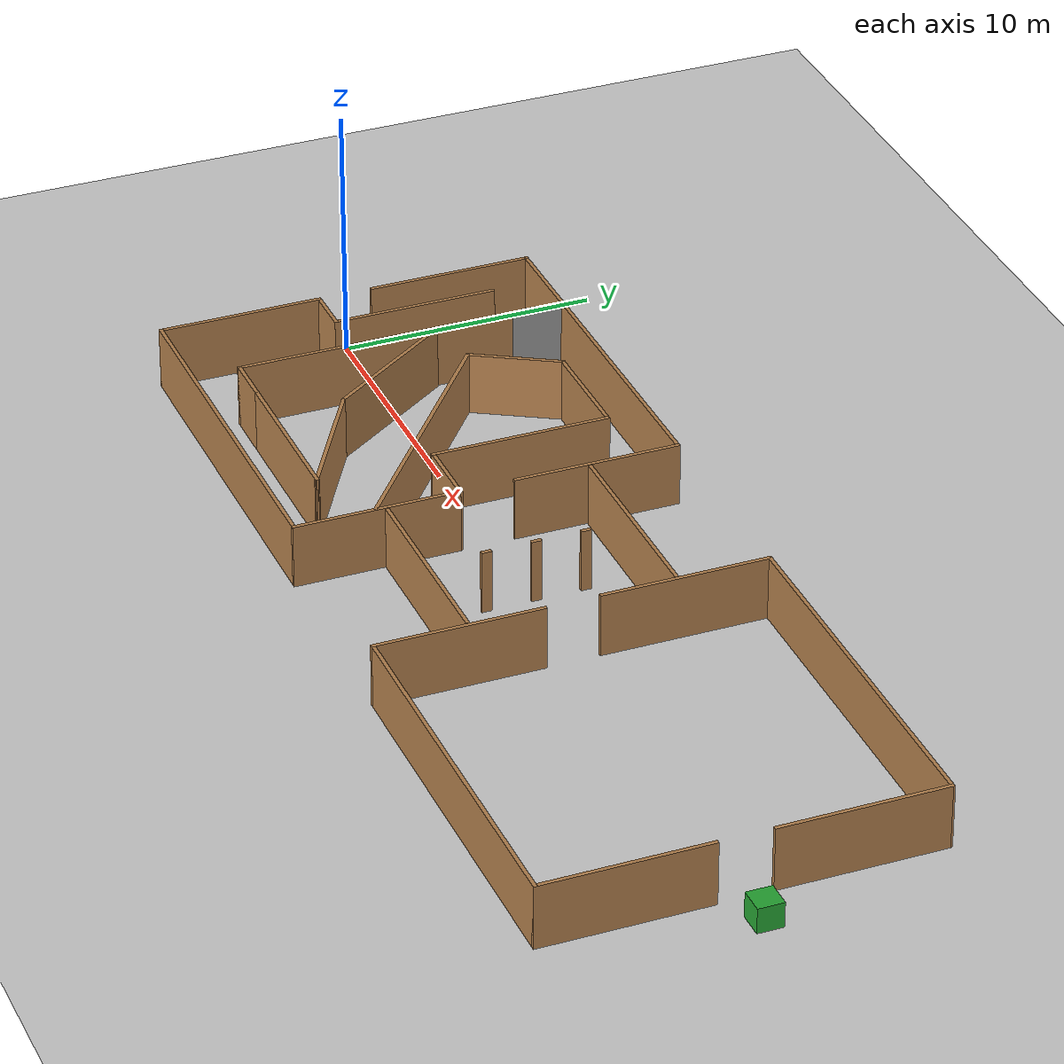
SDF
<sdf version="1.7">
 <world name="default">
  <light name="sun" type="directional">
   <pose>0 0 10 0 -0 0</pose>
   <diffuse>0.8 0.8 0.8 1</diffuse>
   <specular>0.2 0.2 0.2 1</specular>
   <attenuation>
    <range>1000</range>
    <constant>0.9</constant>
    <linear>0.01</linear>
    <quadratic>0.001</quadratic>
   </attenuation>
   <direction>-0.5 0.1 -0.9</direction>
   <spot><inner_angle>0</inner_angle><outer_angle>0</outer_angle><falloff>0</falloff></spot>
  </light>
  <model name="ground_plane">
   <static>1</static>
   <link name="link">
    <collision name="collision">
     <geometry><plane><normal>0 0 1</normal><size>100 100</size></plane></geometry>
     <surface><friction><ode><mu>100</mu><mu2>50</mu2></ode></friction></surface>
    </collision>
    <visual name="visual">
     <cast_shadows>0</cast_shadows>
     <geometry><plane><normal>0 0 1</normal><size>100 100</size></plane></geometry>
     <material>
      <script><uri>file://media/materials/scripts/gazebo.material</uri><name>Gazebo/Grey</name></script>
     </material>
    </visual>
   </link>
  </model>
  <gravity>0 0 -9.8</gravity>
  <magnetic_field>6e-06 2.3e-05 -4.2e-05</magnetic_field>
  <atmosphere type="adiabatic"/>
  <physics type="ode">
   <max_step_size>0.001</max_step_size>
   <real_time_factor>1</real_time_factor>
   <real_time_update_rate>1000</real_time_update_rate>
  </physics>
  <scene><ambient>0.4 0.4 0.4 1</ambient><background>0.7 0.7 0.7 1</background><shadows>1</shadows></scene>
  <spherical_coordinates>
   <surface_model>EARTH_WGS84</surface_model>
   <latitude_deg>0</latitude_deg>
   <longitude_deg>0</longitude_deg>
   <elevation>0</elevation>
   <heading_deg>0</heading_deg>
  </spherical_coordinates>
  <model name="racing_wall_v2">
   <pose>7.5 0 0 0 -0 0</pose>
   <link name="Wall_10">
    <collision name="Wall_10_Collision">
     <geometry><box><size>6.5 0.15 2.5</size></box></geometry>
     <pose>0 0 1.25 0 -0 0</pose>
    </collision>
    <visual name="Wall_10_Visual">
     <pose>0 0 1.25 0 -0 0</pose>
     <geometry><box><size>6.5 0.15 2.5</size></box></geometry>
     <material>
      <script><uri>file://media/materials/scripts/gazebo.material</uri><name>Gazebo/Wood</name></script>
      <ambient>1 1 1 1</ambient>
     </material>
     <meta><layer>0</layer></meta>
    </visual>
    <pose>-7.42509 4.25 0 0 -0 -1.5708</pose>
   </link>
   <link name="Wall_12">
    <collision name="Wall_12_Collision">
     <geometry><box><size>6.5 0.15 2.5</size></box></geometry>
     <pose>0 0 1.25 0 -0 0</pose>
    </collision>
    <visual name="Wall_12_Visual">
     <pose>0 0 1.25 0 -0 0</pose>
     <geometry><box><size>6.5 0.15 2.5</size></box></geometry>
     <material>
      <script><uri>file://media/materials/scripts/gazebo.material</uri><name>Gazebo/Wood</name></script>
      <ambient>1 1 1 1</ambient>
     </material>
     <meta><layer>0</layer></meta>
    </visual>
    <pose>-7.42509 -4.25 0 0 -0 1.5708</pose>
   </link>
   <link name="Wall_14">
    <collision name="Wall_14_Collision">
     <geometry><box><size>6.5 0.15 2.5</size></box></geometry>
     <pose>0 0 1.25 0 -0 0</pose>
    </collision>
    <visual name="Wall_14_Visual">
     <pose>0 0 1.25 0 -0 0</pose>
     <geometry><box><size>6.5 0.15 2.5</size></box></geometry>
     <material>
      <script><uri>file://media/materials/scripts/gazebo.material</uri><name>Gazebo/Wood</name></script>
      <ambient>1 1 1 1</ambient>
     </material>
     <meta><layer>0</layer></meta>
    </visual>
    <pose>7.4249 4.25 0 0 -0 -1.5708</pose>
   </link>
   <link name="Wall_16">
    <collision name="Wall_16_Collision">
     <geometry><box><size>6.5 0.15 2.5</size></box></geometry>
     <pose>0 0 1.25 0 -0 0</pose>
    </collision>
    <visual name="Wall_16_Visual">
     <pose>0 0 1.25 0 -0 0</pose>
     <geometry><box><size>6.5 0.15 2.5</size></box></geometry>
     <material>
      <script><uri>file://media/materials/scripts/gazebo.material</uri><name>Gazebo/Wood</name></script>
      <ambient>1 1 1 1</ambient>
     </material>
     <meta><layer>0</layer></meta>
    </visual>
    <pose>7.4249 -4.25 0 0 -0 1.5708</pose>
   </link>
   <link name="Wall_18">
    <collision name="Wall_18_Collision">
     <geometry><box><size>2 0.15 2.5</size></box></geometry>
     <pose>0 0 1.25 0 -0 0</pose>
    </collision>
    <visual name="Wall_18_Visual">
     <pose>0 0 1.25 0 -0 0</pose>
     <geometry><box><size>2 0.15 2.5</size></box></geometry>
     <material>
      <script><uri>file://media/materials/scripts/gazebo.material</uri><name>Gazebo/Wood</name></script>
      <ambient>1 1 1 1</ambient>
     </material>
     <meta><layer>0</layer></meta>
    </visual>
    <pose>-6.5001 -1.075 0 0 -0 0</pose>
   </link>
   <link name="Wall_20">
    <collision name="Wall_20_Collision">
     <geometry><box><size>6.5 0.15 2.5</size></box></geometry>
     <pose>0 0 1.25 0 -0 0</pose>
    </collision>
    <visual name="Wall_20_Visual">
     <pose>0 0 1.25 0 -0 0</pose>
     <geometry><box><size>6.5 0.15 2.5</size></box></geometry>
     <material>
      <script><uri>file://media/materials/scripts/gazebo.material</uri><name>Gazebo/Wood</name></script>
      <ambient>1 1 1 1</ambient>
     </material>
     <meta><layer>0</layer></meta>
    </visual>
    <pose>-5.5751 2.1 0 0 -0 1.5708</pose>
   </link>
   <link name="Wall_24">
    <collision name="Wall_24_Collision">
     <geometry><box><size>11 0.15 2.5</size></box></geometry>
     <pose>0 0 1.25 0 -0 0</pose>
    </collision>
    <visual name="Wall_24_Visual">
     <pose>0 0 1.25 0 -0 0</pose>
     <geometry><box><size>11 0.15 2.5</size></box></geometry>
     <material>
      <script><uri>file://media/materials/scripts/gazebo.material</uri><name>Gazebo/Wood</name></script>
      <ambient>1 1 1 1</ambient>
     </material>
     <meta><layer>0</layer></meta>
    </visual>
    <pose>-3.7251 -0.15 0 0 -0 -1.5708</pose>
   </link>
   <link name="Wall_28">
    <collision name="Wall_28_Collision">
     <geometry><box><size>2.25 0.15 2.5</size></box></geometry>
     <pose>0 0 1.25 0 -0 0</pose>
    </collision>
    <visual name="Wall_28_Visual">
     <pose>0 0 1.25 0 -0 0</pose>
     <geometry><box><size>2.25 0.15 2.5</size></box></geometry>
     <material>
      <script><uri>file://media/materials/scripts/gazebo.material</uri><name>Gazebo/Grey</name></script>
      <ambient>1 1 1 1</ambient>
     </material>
     <meta><layer>0</layer></meta>
    </visual>
    <pose>-3.7251 6.325 0 0 -0 1.5708</pose>
   </link>
   <link name="Wall_31">
    <collision name="Wall_31_Collision">
     <geometry><box><size>2 0.15 2.5</size></box></geometry>
     <pose>0 0 1.25 0 -0 0</pose>
    </collision>
    <visual name="Wall_31_Visual">
     <pose>0 0 1.25 0 -0 0</pose>
     <geometry><box><size>2 0.15 2.5</size></box></geometry>
     <material>
      <script><uri>file://media/materials/scripts/gazebo.material</uri><name>Gazebo/Wood</name></script>
      <ambient>1 1 1 1</ambient>
     </material>
     <meta><layer>0</layer></meta>
    </visual>
    <pose>-2.8001 -5.575 0 0 -0 0</pose>
   </link>
   <link name="Wall_37">
    <collision name="Wall_37_Collision">
     <geometry><box><size>3.75 0.15 2.5</size></box></geometry>
     <pose>0 0 1.25 0 -0 0</pose>
    </collision>
    <visual name="Wall_37_Visual">
     <pose>0 0 1.25 0 -0 0</pose>
     <geometry><box><size>3.75 0.15 2.5</size></box></geometry>
     <material>
      <script><uri>file://media/materials/scripts/gazebo.material</uri><name>Gazebo/Wood</name></script>
      <ambient>1 1 1 1</ambient>
     </material>
     <meta><layer>0</layer></meta>
    </visual>
    <pose>-0.549448 4.22312 0 0 -0 1.0472</pose>
   </link>
   <link name="Wall_38">
    <collision name="Wall_38_Collision">
     <geometry><box><size>4.5 0.15 2.5</size></box></geometry>
     <pose>0 0 1.25 0 -0 0</pose>
    </collision>
    <visual name="Wall_38_Visual">
     <pose>0 0 1.25 0 -0 0</pose>
     <geometry><box><size>4.5 0.15 2.5</size></box></geometry>
     <material>
      <script><uri>file://media/materials/scripts/gazebo.material</uri><name>Gazebo/Wood</name></script>
      <ambient>1 1 1 1</ambient>
     </material>
     <meta><layer>0</layer></meta>
    </visual>
    <pose>2.52555 5.78196 0 0 -0 0</pose>
   </link>
   <link name="Wall_4">
    <collision name="Wall_4_Collision">
     <geometry><box><size>15 0.15 2.5</size></box></geometry>
     <pose>0 0 1.25 0 -0 0</pose>
    </collision>
    <visual name="Wall_4_Visual">
     <pose>0 0 1.25 0 -0 0</pose>
     <geometry><box><size>15 0.15 2.5</size></box></geometry>
     <material>
      <script><uri>file://media/materials/scripts/gazebo.material</uri><name>Gazebo/Wood</name></script>
      <ambient>1 1 1 1</ambient>
     </material>
     <meta><layer>0</layer></meta>
    </visual>
    <pose>-9.6e-05 7.425 0 0 -0 0</pose>
   </link>
   <link name="Wall_40">
    <collision name="Wall_40_Collision">
     <geometry><box><size>6.75 0.15 2.5</size></box></geometry>
     <pose>0 0 1.25 0 -0 0</pose>
    </collision>
    <visual name="Wall_40_Visual">
     <pose>0 0 1.25 0 -0 0</pose>
     <geometry><box><size>6.75 0.15 2.5</size></box></geometry>
     <material>
      <script><uri>file://media/materials/scripts/gazebo.material</uri><name>Gazebo/Wood</name></script>
      <ambient>1 1 1 1</ambient>
     </material>
     <meta><layer>0</layer></meta>
    </visual>
    <pose>1.4249 -5.575 0 0 -0 0</pose>
   </link>
   <link name="Wall_41">
    <collision name="Wall_41_Collision">
     <geometry><box><size>5.75 0.15 2.5</size></box></geometry>
     <pose>0 0 1.25 0 -0 0</pose>
    </collision>
    <visual name="Wall_41_Visual">
     <pose>0 0 1.25 0 -0 0</pose>
     <geometry><box><size>5.75 0.15 2.5</size></box></geometry>
     <material>
      <script><uri>file://media/materials/scripts/gazebo.material</uri><name>Gazebo/Wood</name></script>
      <ambient>1 1 1 1</ambient>
     </material>
     <meta><layer>0</layer></meta>
    </visual>
    <pose>2.30003 -4.175 0 0 -0 2.61799</pose>
   </link>
   <link name="Wall_42">
    <collision name="Wall_42_Collision">
     <geometry><box><size>6.18134 0.15 2.5</size></box></geometry>
     <pose>0 0 1.25 0 -0 0</pose>
    </collision>
    <visual name="Wall_42_Visual">
     <pose>0 0 1.25 0 -0 0</pose>
     <geometry><box><size>6.18134 0.15 2.5</size></box></geometry>
     <material>
      <script><uri>file://media/materials/scripts/gazebo.material</uri><name>Gazebo/Wood</name></script>
      <ambient>1 1 1 1</ambient>
     </material>
     <meta><layer>0</layer></meta>
    </visual>
    <pose>-1.85408 -0.304375 0 0 -0 2.18147</pose>
   </link>
   <link name="Wall_45">
    <collision name="Wall_45_Collision">
     <geometry><box><size>11.3991 0.15 2.5</size></box></geometry>
     <pose>0 0 1.25 0 -0 0</pose>
    </collision>
    <visual name="Wall_45_Visual">
     <pose>0 0 1.25 0 -0 0</pose>
     <geometry><box><size>11.3991 0.15 2.5</size></box></geometry>
     <material>
      <script><uri>file://media/materials/scripts/gazebo.material</uri><name>Gazebo/Wood</name></script>
      <ambient>1 1 1 1</ambient>
     </material>
     <meta><layer>0</layer></meta>
    </visual>
    <pose>2.97012 -0.814697 0 0 -0 2.47472</pose>
   </link>
   <link name="Wall_47">
    <collision name="Wall_47_Collision">
     <geometry><box><size>7 0.15 2.5</size></box></geometry>
     <pose>0 0 1.25 0 -0 0</pose>
    </collision>
    <visual name="Wall_47_Visual">
     <pose>0 0 1.25 0 -0 0</pose>
     <geometry><box><size>7 0.15 2.5</size></box></geometry>
     <material>
      <script><uri>file://media/materials/scripts/gazebo.material</uri><name>Gazebo/Wood</name></script>
      <ambient>1 1 1 1</ambient>
     </material>
     <meta><layer>0</layer></meta>
    </visual>
    <pose>4.70055 2.35696 0 0 -0 -1.5708</pose>
   </link>
   <link name="Wall_48">
    <collision name="Wall_48_Collision">
     <geometry><box><size>2.87436 0.15 2.5</size></box></geometry>
     <pose>0 0 1.25 0 -0 0</pose>
    </collision>
    <visual name="Wall_48_Visual">
     <pose>0 0 1.25 0 -0 0</pose>
     <geometry><box><size>2.87436 0.15 2.5</size></box></geometry>
     <material>
      <script><uri>file://media/materials/scripts/gazebo.material</uri><name>Gazebo/Wood</name></script>
      <ambient>1 1 1 1</ambient>
     </material>
     <meta><layer>0</layer></meta>
    </visual>
    <pose>6.06273 -1.07152 0 0 -0 -0.002555</pose>
   </link>
   <link name="Wall_8">
    <collision name="Wall_8_Collision">
     <geometry><box><size>15 0.15 2.5</size></box></geometry>
     <pose>0 0 1.25 0 -0 0</pose>
    </collision>
    <visual name="Wall_8_Visual">
     <pose>0 0 1.25 0 -0 0</pose>
     <geometry><box><size>15 0.15 2.5</size></box></geometry>
     <material>
      <script><uri>file://media/materials/scripts/gazebo.material</uri><name>Gazebo/Wood</name></script>
      <ambient>1 1 1 1</ambient>
     </material>
     <meta><layer>0</layer></meta>
    </visual>
    <pose>-9.6e-05 -7.425 0 0 -0 0</pose>
   </link>
   <static>1</static>
  </model>
  <model name="door_v2">
   <pose>19 0 0 0 -0 0</pose>
   <link name="Wall_57">
    <collision name="Wall_57_Collision">
     <geometry><box><size>7.93021 0.15 2.5</size></box></geometry>
     <pose>0 0 1.25 0 -0 0</pose>
    </collision>
    <visual name="Wall_57_Visual">
     <pose>0 0 1.25 0 -0 0</pose>
     <geometry><box><size>7.93021 0.15 2.5</size></box></geometry>
     <material>
      <script><uri>file://media/materials/scripts/gazebo.material</uri><name>Gazebo/Wood</name></script>
      <ambient>1 1 1 1</ambient>
     </material>
     <meta><layer>0</layer></meta>
    </visual>
    <pose>0 3.925 0 0 -0 0</pose>
   </link>
   <link name="Wall_61">
    <collision name="Wall_61_Collision">
     <geometry><box><size>7.93021 0.15 2.5</size></box></geometry>
     <pose>0 0 1.25 0 -0 0</pose>
    </collision>
    <visual name="Wall_61_Visual">
     <pose>0 0 1.25 0 -0 0</pose>
     <geometry><box><size>7.93021 0.15 2.5</size></box></geometry>
     <material>
      <script><uri>file://media/materials/scripts/gazebo.material</uri><name>Gazebo/Wood</name></script>
      <ambient>1 1 1 1</ambient>
     </material>
     <meta><layer>0</layer></meta>
    </visual>
    <pose>0 -3.925 0 0 -0 3.14159</pose>
   </link>
   <link name="Wall_68">
    <collision name="Wall_68_Collision">
     <geometry><box><size>0.4 0.15 2.5</size></box></geometry>
     <pose>0 0 1.25 0 -0 0</pose>
    </collision>
    <visual name="Wall_68_Visual">
     <pose>0 0 1.25 0 -0 0</pose>
     <geometry><box><size>0.4 0.15 2.5</size></box></geometry>
     <material>
      <script><uri>file://media/materials/scripts/gazebo.material</uri><name>Gazebo/Wood</name></script>
      <ambient>1 1 1 1</ambient>
     </material>
     <meta><layer>0</layer></meta>
    </visual>
    <pose>-0.015051 2.12889 0 0 -0 -1.5708</pose>
   </link>
   <link name="Wall_72">
    <collision name="Wall_72_Collision">
     <geometry><box><size>0.4 0.15 2.5</size></box></geometry>
     <pose>0 0 1.25 0 -0 0</pose>
    </collision>
    <visual name="Wall_72_Visual">
     <pose>0 0 1.25 0 -0 0</pose>
     <geometry><box><size>0.4 0.15 2.5</size></box></geometry>
     <material>
      <script><uri>file://media/materials/scripts/gazebo.material</uri><name>Gazebo/Wood</name></script>
      <ambient>1 1 1 1</ambient>
     </material>
     <meta><layer>0</layer></meta>
    </visual>
    <pose>-0.015051 0.22889 0 0 -0 -1.5708</pose>
   </link>
   <link name="Wall_78">
    <collision name="Wall_78_Collision">
     <geometry><box><size>0.4 0.15 2.5</size></box></geometry>
     <pose>0 0 1.25 0 -0 0</pose>
    </collision>
    <visual name="Wall_78_Visual">
     <pose>0 0 1.25 0 -0 0</pose>
     <geometry><box><size>0.4 0.15 2.5</size></box></geometry>
     <material>
      <script><uri>file://media/materials/scripts/gazebo.material</uri><name>Gazebo/Wood</name></script>
      <ambient>1 1 1 1</ambient>
     </material>
     <meta><layer>0</layer></meta>
    </visual>
    <pose>-0.015051 -1.67111 0 0 -0 -1.5708</pose>
   </link>
   <static>1</static>
  </model>
  <model name="obs_avoid_v2">
   <pose>30.5 -0 0 0 -0 0</pose>
   <link name="Wall_10">
    <collision name="Wall_10_Collision">
     <geometry><box><size>6.5 0.15 2.5</size></box></geometry>
     <pose>0 0 1.25 0 -0 0</pose>
    </collision>
    <visual name="Wall_10_Visual">
     <pose>0 0 1.25 0 -0 0</pose>
     <geometry><box><size>6.5 0.15 2.5</size></box></geometry>
     <material>
      <script><uri>file://media/materials/scripts/gazebo.material</uri><name>Gazebo/Wood</name></script>
      <ambient>1 1 1 1</ambient>
     </material>
     <meta><layer>0</layer></meta>
    </visual>
    <pose>-7.42959 4.21926 0 0 -0 -1.5708</pose>
   </link>
   <link name="Wall_12">
    <collision name="Wall_12_Collision">
     <geometry><box><size>6.5 0.15 2.5</size></box></geometry>
     <pose>0 0 1.25 0 -0 0</pose>
    </collision>
    <visual name="Wall_12_Visual">
     <pose>0 0 1.25 0 -0 0</pose>
     <geometry><box><size>6.5 0.15 2.5</size></box></geometry>
     <material>
      <script><uri>file://media/materials/scripts/gazebo.material</uri><name>Gazebo/Wood</name></script>
      <ambient>1 1 1 1</ambient>
     </material>
     <meta><layer>0</layer></meta>
    </visual>
    <pose>7.42959 4.21926 0 0 -0 -1.5708</pose>
   </link>
   <link name="Wall_14">
    <collision name="Wall_14_Collision">
     <geometry><box><size>6.5 0.15 2.5</size></box></geometry>
     <pose>0 0 1.25 0 -0 0</pose>
    </collision>
    <visual name="Wall_14_Visual">
     <pose>0 0 1.25 0 -0 0</pose>
     <geometry><box><size>6.5 0.15 2.5</size></box></geometry>
     <material>
      <script><uri>file://media/materials/scripts/gazebo.material</uri><name>Gazebo/Wood</name></script>
      <ambient>1 1 1 1</ambient>
     </material>
     <meta><layer>0</layer></meta>
    </visual>
    <pose>7.42959 -4.28074 0 0 -0 1.5708</pose>
   </link>
   <link name="Wall_2">
    <collision name="Wall_2_Collision">
     <geometry><box><size>15.0093 0.15 2.5</size></box></geometry>
     <pose>0 0 1.25 0 -0 0</pose>
    </collision>
    <visual name="Wall_2_Visual">
     <pose>0 0 1.25 0 -0 0</pose>
     <geometry><box><size>15.0093 0.15 2.5</size></box></geometry>
     <material>
      <script><uri>file://media/materials/scripts/gazebo.material</uri><name>Gazebo/Wood</name></script>
      <ambient>1 1 1 1</ambient>
     </material>
     <meta><layer>0</layer></meta>
    </visual>
    <pose>-0 7.42485 0 0 -0 -0.004117</pose>
   </link>
   <link name="Wall_4">
    <collision name="Wall_4_Collision">
     <geometry><box><size>15 0.15 2.5</size></box></geometry>
     <pose>0 0 1.25 0 -0 0</pose>
    </collision>
    <visual name="Wall_4_Visual">
     <pose>0 0 1.25 0 -0 0</pose>
     <geometry><box><size>15 0.15 2.5</size></box></geometry>
     <material>
      <script><uri>file://media/materials/scripts/gazebo.material</uri><name>Gazebo/Wood</name></script>
      <ambient>1 1 1 1</ambient>
     </material>
     <meta><layer>0</layer></meta>
    </visual>
    <pose>0.004588 -7.45574 0 0 -0 0</pose>
   </link>
   <link name="Wall_8">
    <collision name="Wall_8_Collision">
     <geometry><box><size>6.5 0.15 2.5</size></box></geometry>
     <pose>0 0 1.25 0 -0 0</pose>
    </collision>
    <visual name="Wall_8_Visual">
     <pose>0 0 1.25 0 -0 0</pose>
     <geometry><box><size>6.5 0.15 2.5</size></box></geometry>
     <material>
      <script><uri>file://media/materials/scripts/gazebo.material</uri><name>Gazebo/Wood</name></script>
      <ambient>1 1 1 1</ambient>
     </material>
     <meta><layer>0</layer></meta>
    </visual>
    <pose>-7.42041 -4.28074 0 0 -0 1.5708</pose>
   </link>
   <static>1</static>
  </model>
  <model name="unit_box">
   <pose>39.432 0.001196 0.499995 0 1e-05 -0.002671</pose>
   <link name="link">
    <inertial>
     <mass>1</mass>
     <inertia>
      <ixx>0.166667</ixx>
      <ixy>0</ixy>
      <ixz>0</ixz>
      <iyy>0.166667</iyy>
      <iyz>0</iyz>
      <izz>0.166667</izz>
     </inertia>
    </inertial>
    <collision name="collision"><geometry><box><size>1 1 1</size></box></geometry></collision>
    <visual name="visual">
     <geometry><box><size>1 1 1</size></box></geometry>
     <material>
      <script><name>Gazebo/Green</name><uri>file://media/materials/scripts/gazebo.material</uri></script>
     </material>
    </visual>
   </link>
   <plugin name="random_box" filename="/home/lpga/finalhw_ros/src/gazebo_pkg/world/librandom_box.so"/>
  </model>
 </world>
</sdf>
